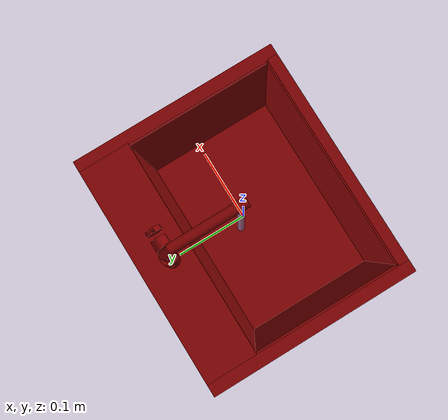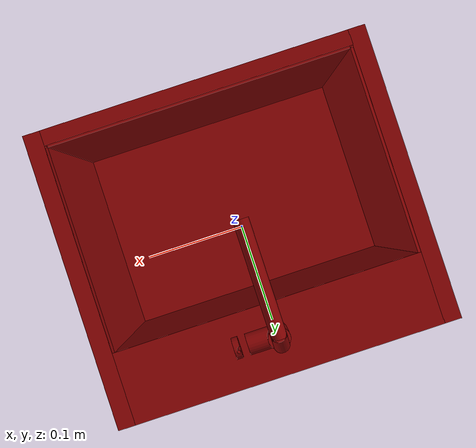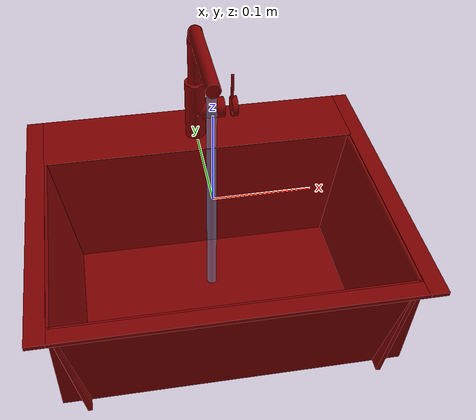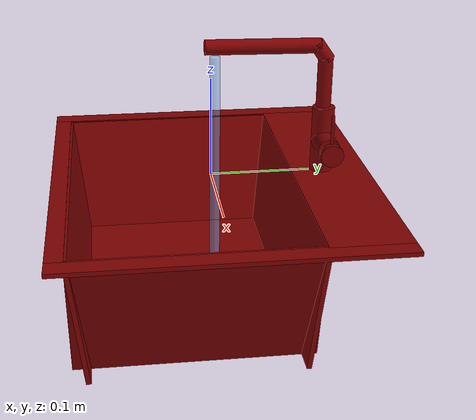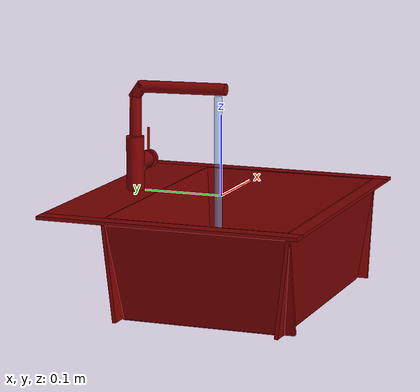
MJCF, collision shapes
<?xml version='1.0' encoding='UTF-8'?>
<mujoco model="model">
  <option timestep="0.002" gravity="0.0 0.0 -9.81"/>
  <compiler angle="radian"/>
  <asset>
    <mesh file="visuals/handle.obj" name="handle_vis"/>
    <mesh file="visuals/Body001.obj" name="Body001_vis"/>
    <mesh file="visuals/spout.obj" name="spout_vis"/>
    <texture file="visuals/T_BC001.png" name="Body001_material" type="2d"/>
    <material name="Body001_material" rgba="1 1 1 1.0" texture="Body001_material" shininess="0.4472135901451111" specular="1"/>
    <texture file="visuals/T_BC001.png" name="handle_material" type="2d"/>
    <material name="handle_material" rgba="1 1 1 1.0" texture="handle_material" shininess="0.4472135901451111" specular="1"/>
    <texture file="visuals/T_BC001.png" name="spout_material" type="2d"/>
    <material name="spout_material" rgba="1 1 1 1.0" texture="spout_material" shininess="0.4472135901451111" specular="1"/>
  </asset>
  <default>
    <default class="visual">
      <geom conaffinity="0" contype="0" group="1" type="mesh"/>
    </default>
    <default class="collision">
      <geom group="0" rgba="0.5 0 0 0.5" solimp="0.998 0.998 0.001" solref="0.001 2"/>
    </default>
    <default class="spawn">
      <geom group="0" rgba="1 1 1 0.5" contype="0" conaffinity="0"/>
      <site group="0" rgba="1 1 1 0.5"/>
    </default>
    <default class="region">
      <geom group="1" conaffinity="0" contype="0" rgba="0 1 0 0"/>
    </default>
  </default>
  <worldbody>
    <body>
      <body name="object">
        <geom mesh="Body001_vis" type="mesh" solimp="0.998 0.998 0.001" solref="0.001 1" friction="0.95 0.3 0.1" class="visual" material="Body001_material"/>
        <geom class="collision" type="box" pos="-0.15440972 -0.03054274 -0.06201604" size="0.06288512796163559 0.11329737305641174 0.0021424531005322933" quat="0.7716148495674133 0.0 0.6360900402069092 0.0"/>
        <geom class="collision" type="box" pos="0.17687902 0.00000007 -0.00155498" size="0.009227972477674484 0.1596468687057495 0.0021424090955406427" quat="1.0 0.0 0.0 0.0"/>
        <geom class="collision" type="box" pos="0.00064425 0.12084971 -0.00155498" size="0.16867321729660034 0.038797274231910706 0.002142413752153516" quat="1.0 0.0 0.0 0.0"/>
        <geom class="collision" type="box" pos="0.00064425 -0.15143247 -0.00155498" size="0.1686735302209854 0.008214498870074749 0.0021424186415970325" quat="1.0 0.0 0.0 0.0"/>
        <geom class="collision" type="box" pos="-0.17681533 0.00000002 -0.00155498" size="0.009290786460042 0.1596469283103943 0.0021424235310405493" quat="1.0 0.0 0.0 0.0"/>
        <geom class="collision" type="box" pos="0.15485750 -0.03054274 -0.06201604" size="0.06288512796163559 0.11329737305641174 0.0021424531005322933" quat="0.7716148495674133 0.0 -0.6360900402069092 0.0"/>
        <geom class="collision" type="box" pos="0.00064425 -0.13596424 -0.06188247" size="0.16867566108703613 0.0022713751532137394 0.06206813454627991" quat="0.9983983635902405 0.056574560701847076 0.0 0.0"/>
        <geom class="collision" type="box" pos="0.00064425 0.07717162 -0.06188247" size="0.16867566108703613 0.0022713751532137394 0.06206813454627991" quat="0.9983983635902405 -0.05657455697655678 -0.0 0.0"/>
        <geom class="collision" type="box" pos="0.00008924 -0.02952379 -0.12457484" size="0.14214298129081726 0.09981190413236618 0.0014360679779201746" quat="1.0 0.0 0.0 0.0"/>
        <geom class="collision" type="cylinder" pos="0.00000067 0.00656517 -0.13016099" size="0.03485992178320885 0.0069434852339327335" quat="1.0 0.0 0.0 0.0"/>
        <geom class="collision" type="cylinder" pos="0.01542477 0.11310694 0.03214037" size="0.011124488897621632 0.01566363126039505" quat="0.7071068286895752 -0.0 0.7071067690849304 0.0"/>
        <geom class="collision" type="cylinder" pos="-0.00072553 0.11310694 0.03319678" size="0.011124487966299057 0.03374015539884567" quat="1.0 0.0 0.0 0.0"/>
        <body name="handle">
          <joint axis="1.0 0.0 0.0" pos="0.03863420 0.11310913 0.03222179" limited="true" name="handle_temp_joint" type="hinge" range="-0.7853981633974483 0.7853981633974483" damping="0.5" frictionloss="1" armature="2"/>
          <joint axis="0.0 1.0 0.0" pos="0.03863420 0.11310913 0.03222179" limited="true" name="handle_joint" type="hinge" range="0 0.5" damping="0.5" frictionloss="1" armature="2"/>
          <geom mesh="handle_vis" type="mesh" solimp="0.998 0.998 0.001" solref="0.001 1" friction="0.95 0.3 0.1" class="visual" material="handle_material"/>
          <geom class="collision" type="cylinder" pos="0.04211114 0.11310694 0.03169925" size="0.01112449076026678 0.0032203621231019497" quat="0.7071068286895752 -0.0 0.7071067690849304 0.0"/>
          <geom name="handle_main" class="collision" type="cylinder" pos="0.04004330 0.11284500 0.05687199" size="0.0016544638201594353 0.014567042700946331" quat="1.0 0.0 0.0 0.0"/>
        </body>
        <body name="spout">
          <joint axis="0.0 0.0 1.0" pos="-0.00063435 0.11310424 0.10103075" limited="true" name="spout_joint" range="-1.0471975511965976 1.0471975511965976" type="hinge" damping="10"/>
          <site type="cylinder" rgba="0.5 0.75 1 0.5" size="0.005057825706899166 0.12429643422365189" pos="-0.00070102 0.00419412 -0.00319513" name="water"/>
          <geom mesh="spout_vis" type="mesh" solimp="0.998 0.998 0.001" solref="0.001 1" friction="0.95 0.3 0.1" class="visual" material="spout_material"/>
          <geom class="collision" type="cylinder" pos="-0.00062197 0.11244995 0.09294843" size="0.0074004135094583035 0.025132793933153152" quat="1.0 0.0 0.0 0.0"/>
          <geom class="collision" type="cylinder" pos="-0.00062197 0.05025249 0.12995420" size="0.007400413043797016 0.05608806014060974" quat="0.7122171521186829 0.7019591927528381 0.0 0.0" name="spout_main"/>
          <geom class="collision" type="cylinder" pos="-0.00062197 0.10846028 0.12301697" size="0.007400413043797016 0.010537994094192982" quat="0.9537169337272644 0.30070582032203674 0.0 0.0"/>
        </body>
        <geom class="region" name="reg_basin" type="box" pos="5.546500000000454e-05 -0.029078405 -0.06115548" size="0.136028295 0.093201805 0.0573322"/>
        <geom class="region" name="reg_main" type="box" pos="4.999999997368221e-09 0.0 -0.06820097500000001" size="0.187107025 0.16064711 0.070003255"/>
      </body>
    </body>
  </worldbody>
  <actuator>
    <motor name="handle_joint_actuator" joint="handle_joint" gear="10"/>
    <motor name="handle_temp_joint_actuator" joint="handle_temp_joint" gear="10"/>
    <motor name="spout_joint_actuator" joint="spout_joint" gear="10"/>
  </actuator>
</mujoco>
